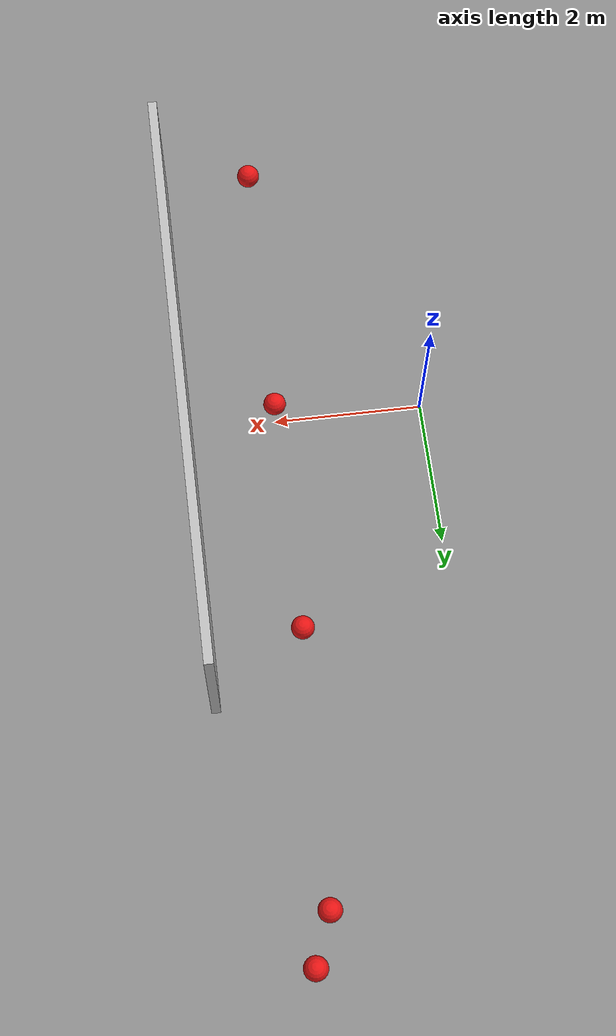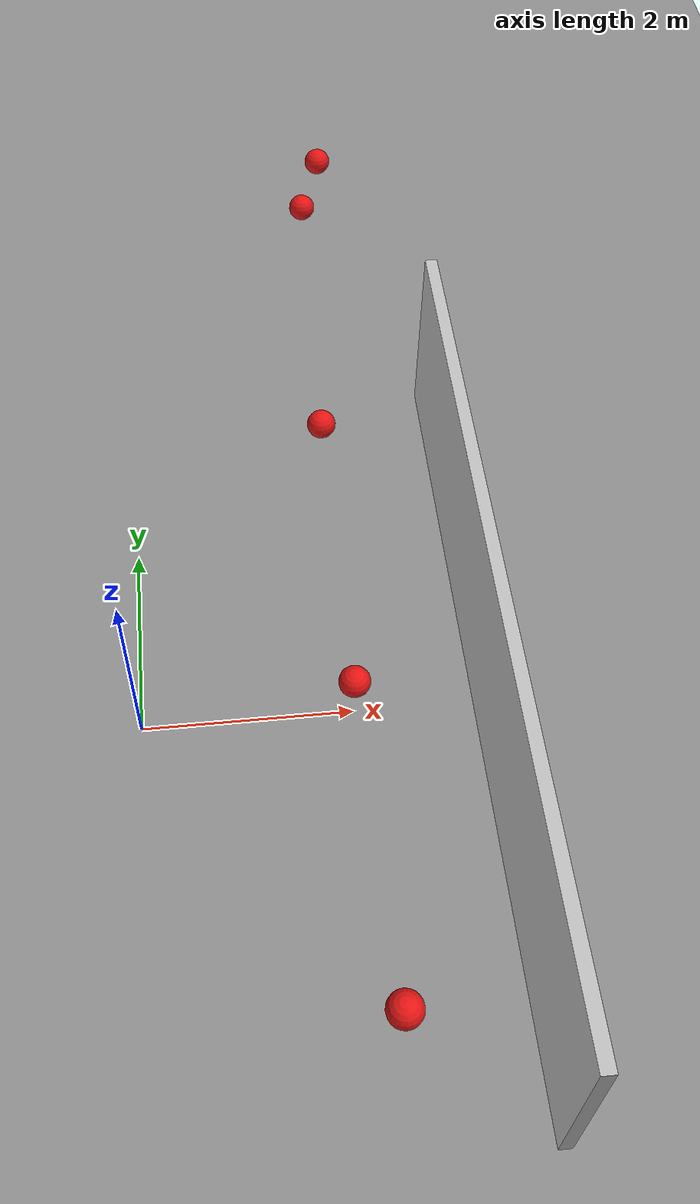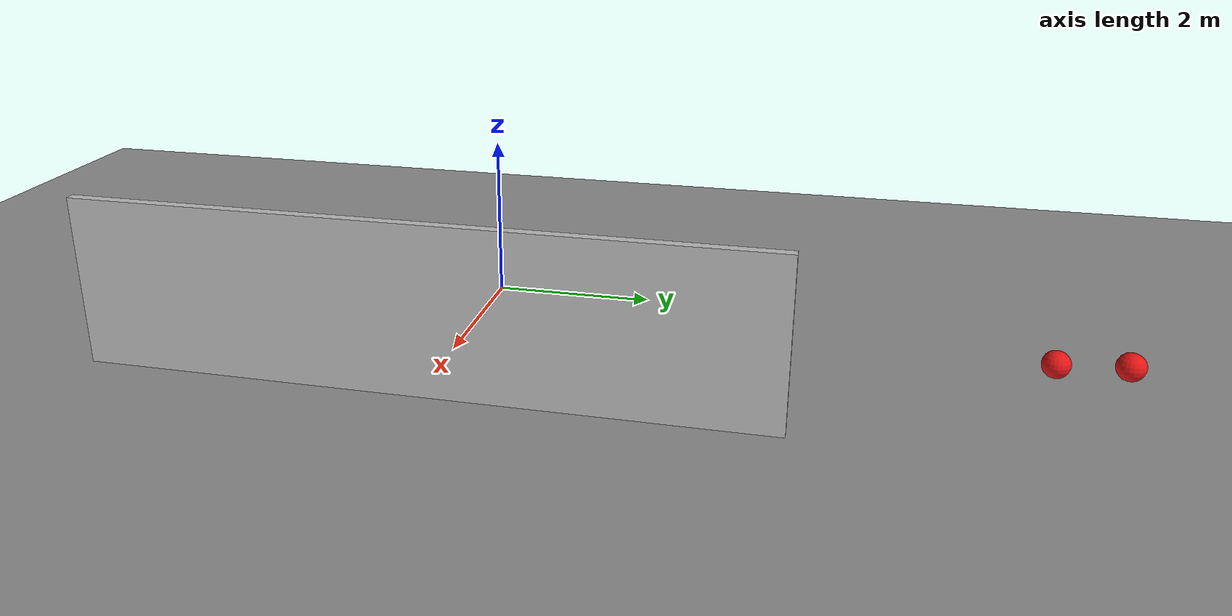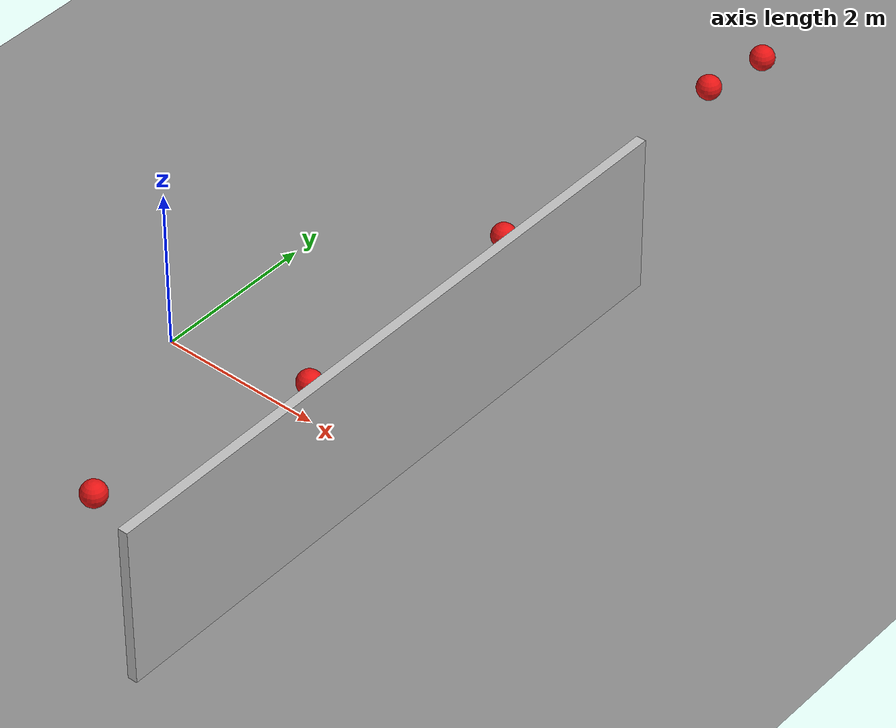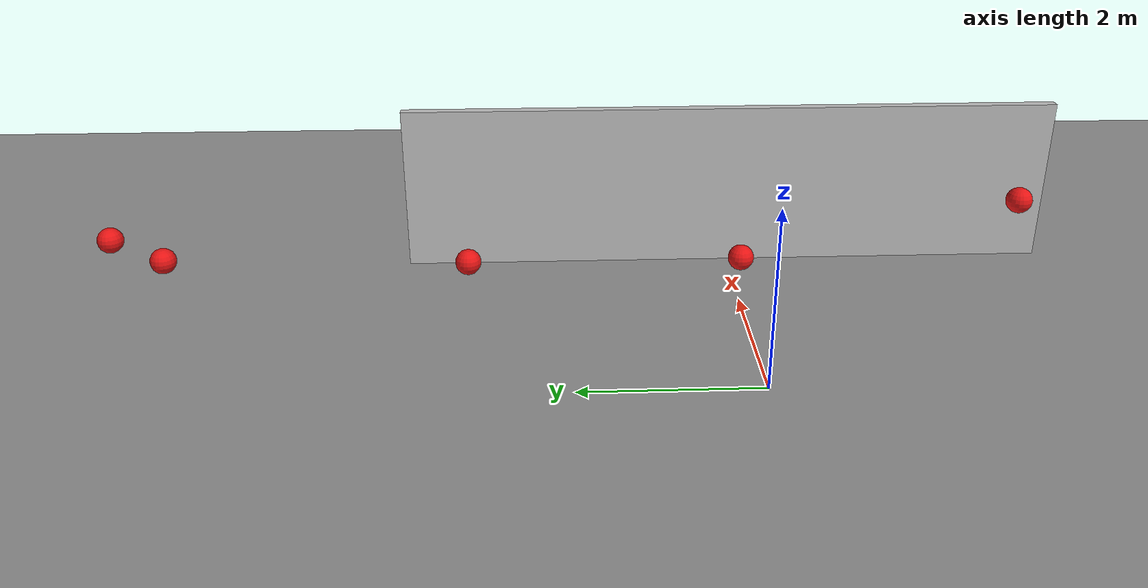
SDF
<?xml version="1.0" ?>
<!--
  HazardWalker — 红球检测截图测试场景。

  用途：
    - 在同一个 Gazebo world 中放置多个固定相机和多个红球。
    - 每个相机对应一个测试视角：完整红球、左边缘截断、顶部截断、多个红球。
    - 仅用于感知效果截图与离线验证，不作为正式导航场景。
-->
<sdf version="1.11">
  <world name="hazardwalker_red_ball_gallery">

    <plugin filename="gz-sim-physics-system" name="gz::sim::systems::Physics"/>
    <plugin filename="gz-sim-user-commands-system" name="gz::sim::systems::UserCommands"/>
    <plugin filename="gz-sim-scene-broadcaster-system" name="gz::sim::systems::SceneBroadcaster"/>
    <plugin filename="gz-sim-sensors-system" name="gz::sim::systems::Sensors">
      <render_engine>ogre2</render_engine>
    </plugin>

    <physics name="1ms" type="ignored">
      <max_step_size>0.001</max_step_size>
      <real_time_factor>1.0</real_time_factor>
    </physics>

    <scene>
      <ambient>0.55 0.55 0.55</ambient>
      <background>0.72 0.72 0.72</background>
      <grid>false</grid>
    </scene>

    <light type="directional" name="gallery_key_light">
      <cast_shadows>true</cast_shadows>
      <pose>0 0 6 0 0 0</pose>
      <diffuse>0.9 0.9 0.9</diffuse>
      <specular>0.2 0.2 0.2</specular>
      <direction>-0.5 -0.2 -0.8</direction>
    </light>

    <model name="ground_plane">
      <static>true</static>
      <link name="link">
        <collision name="collision">
          <geometry>
            <plane>
              <normal>0 0 1</normal>
              <size>20 20</size>
            </plane>
          </geometry>
        </collision>
        <visual name="visual">
          <geometry>
            <plane>
              <normal>0 0 1</normal>
              <size>20 20</size>
            </plane>
          </geometry>
          <material>
            <ambient>0.42 0.42 0.42</ambient>
            <diffuse>0.55 0.55 0.55</diffuse>
            <specular>0.05 0.05 0.05</specular>
          </material>
        </visual>
      </link>
    </model>

    <!-- 低矮背景墙给截图一点空间参照，避免纯灰地面看起来像空画面。 -->
    <model name="back_wall">
      <static>true</static>
      <pose>3.2 0 1.0 0 0 0</pose>
      <link name="link">
        <visual name="visual">
          <geometry>
            <box><size>0.12 8.0 2.0</size></box>
          </geometry>
          <material>
            <ambient>0.66 0.66 0.66</ambient>
            <diffuse>0.74 0.74 0.74</diffuse>
          </material>
        </visual>
        <collision name="collision">
          <geometry>
            <box><size>0.12 8.0 2.0</size></box>
          </geometry>
        </collision>
      </link>
    </model>

    <!--
        多个红球：同一模型多次 include，Gazebo 会生成独立实例。
        四组测试沿 y 轴分开，避免不同测试实例互相进入视野。
    -->
    <include>
      <name>red_ball_center_full</name>
      <uri>model://red_ball</uri>
      <pose>2.0 0.00 0.55 0 0 0</pose>
    </include>
    <include>
      <name>red_ball_left_partial</name>
      <uri>model://red_ball</uri>
      <pose>2.0 3.18 0.55 0 0 0</pose>
    </include>
    <include>
      <name>red_ball_top_partial</name>
      <uri>model://red_ball</uri>
      <pose>2.0 -3.20 1.22 0 0 0</pose>
    </include>
    <include>
      <name>red_ball_multi_a</name>
      <uri>model://red_ball</uri>
      <pose>2.1 6.70 0.58 0 0 0</pose>
    </include>
    <include>
      <name>red_ball_multi_b</name>
      <uri>model://red_ball</uri>
      <pose>2.35 7.36 0.74 0 0 0</pose>
    </include>

    <!-- 相机模型：默认相机光轴朝 +X，位置和视场为截图测试定制。 -->
    <model name="camera_center_full">
      <static>true</static>
      <pose>0 0.00 0.55 0 0 0</pose>
      <link name="camera_link">
        <sensor name="camera" type="camera">
          <camera>
            <horizontal_fov>1.047</horizontal_fov>
            <image><width>640</width><height>480</height></image>
            <clip><near>0.05</near><far>20.0</far></clip>
          </camera>
          <always_on>1</always_on>
          <update_rate>10.0</update_rate>
          <visualize>false</visualize>
          <topic>/gallery/center_full/image</topic>
        </sensor>
      </link>
    </model>

    <model name="camera_left_partial">
      <static>true</static>
      <pose>0 4.00 0.55 0 0 0</pose>
      <link name="camera_link">
        <sensor name="camera" type="camera">
          <camera>
            <horizontal_fov>0.75</horizontal_fov>
            <image><width>640</width><height>480</height></image>
            <clip><near>0.05</near><far>20.0</far></clip>
          </camera>
          <always_on>1</always_on>
          <update_rate>10.0</update_rate>
          <visualize>false</visualize>
          <topic>/gallery/left_partial/image</topic>
        </sensor>
      </link>
    </model>

    <model name="camera_top_partial">
      <static>true</static>
      <pose>0 -3.20 0.55 0 0 0</pose>
      <link name="camera_link">
        <sensor name="camera" type="camera">
          <camera>
            <horizontal_fov>0.82</horizontal_fov>
            <image><width>640</width><height>480</height></image>
            <clip><near>0.05</near><far>20.0</far></clip>
          </camera>
          <always_on>1</always_on>
          <update_rate>10.0</update_rate>
          <visualize>false</visualize>
          <topic>/gallery/top_partial/image</topic>
        </sensor>
      </link>
    </model>

    <model name="camera_multi_visible">
      <static>true</static>
      <pose>0 7.00 0.62 0 0 0</pose>
      <link name="camera_link">
        <sensor name="camera" type="camera">
          <camera>
            <horizontal_fov>1.22</horizontal_fov>
            <image><width>640</width><height>480</height></image>
            <clip><near>0.05</near><far>20.0</far></clip>
          </camera>
          <always_on>1</always_on>
          <update_rate>10.0</update_rate>
          <visualize>false</visualize>
          <topic>/gallery/multi_visible/image</topic>
        </sensor>
      </link>
    </model>

  </world>
</sdf>

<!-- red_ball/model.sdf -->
<sdf version="1.11">
  <model name="red_ball">
    <!-- 静态模型，不会移动 -->
    <static>true</static>

    <link name="ball_link">

      <!-- 视觉：纯红色球体，半径 0.15m -->
      <visual name="ball_visual">
        <geometry>
          <sphere><radius>0.15</radius></sphere>
        </geometry>
        <material>
          <ambient>0.9 0.08 0.08</ambient>
          <diffuse>0.9 0.08 0.08</diffuse>
          <specular>0.1 0.1 0.1</specular>
          <emissive>0.0 0.0 0.0</emissive>
        </material>
      </visual>

      <!-- 碰撞：与视觉一致，用于 LiDAR 点云生成 -->
      <collision name="ball_collision">
        <geometry>
          <sphere><radius>0.15</radius></sphere>
        </geometry>
      </collision>
    </link>
  </model>
</sdf>
